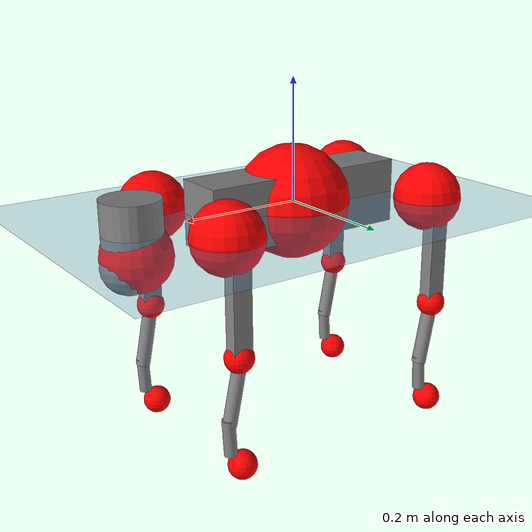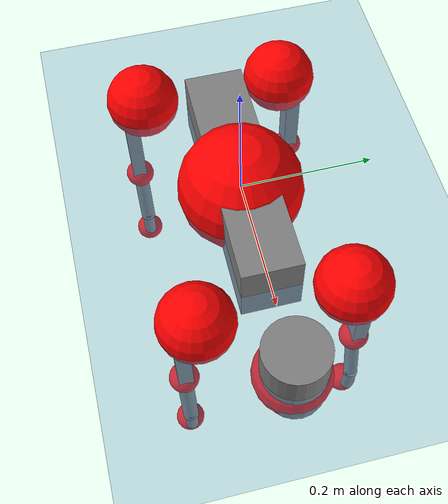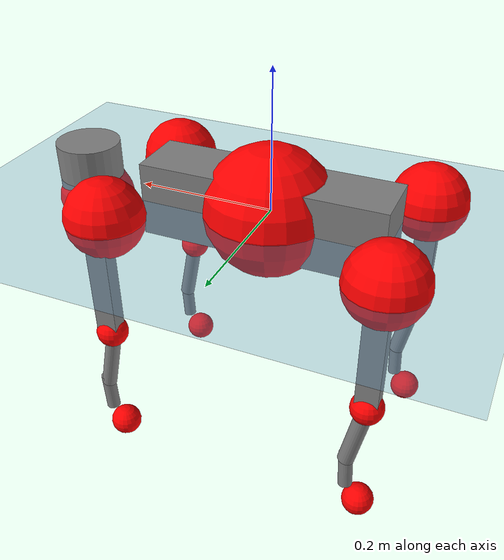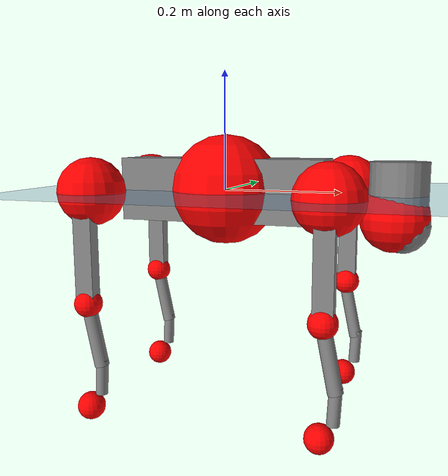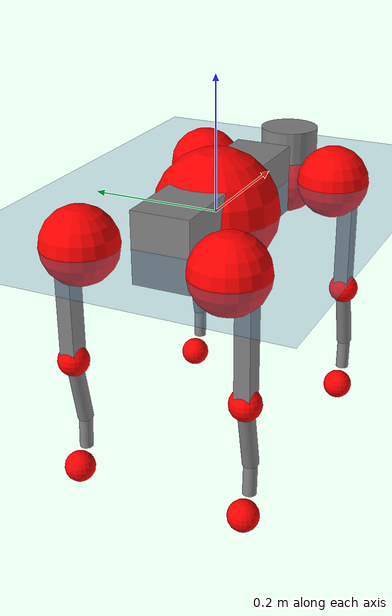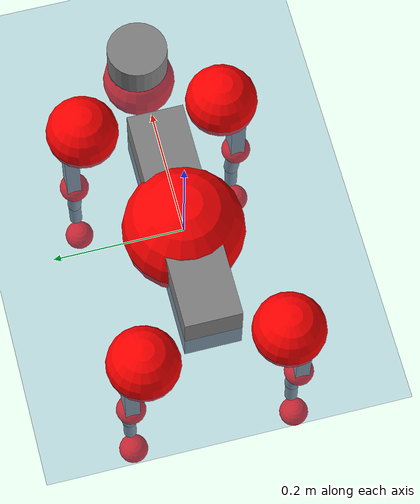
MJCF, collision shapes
<mujoco model="go2">
  <compiler angle="radian" assetdir="assets" balanceinertia="true" inertiafromgeom="false"/>

  <option timestep="0.005" density="1.2" viscosity="2e-05"/>

  <size nkey="1"/>

  <visual>
    <quality shadowsize="8192"/>
    <map shadowclip="0.5"/>
  </visual>

  <default>
    <default class="/">
      <geom contype="0" conaffinity="0" group="1" solref="-1000 -80"/>
      <site size="0.01 0.005 0.005" group="5"/>
      <general forcelimited="true" biastype="affine" gainprm="20" biasprm="0 -20 -0.5"/>
      <default class="go2">
        <joint armature="0.01" damping="0.01" frictionloss="0.2"/>
        <geom condim="1" margin="0.001"/>
        <default class="visual">
          <geom type="mesh" group="2"/>
        </default>
        <default class="collision">
          <geom group="3"/>
          <default class="foot">
            <geom size="0.022 0 0" condim="6" priority="1" friction="0.8 0.02 0.01" solimp="0.015 1 0.022"/>
          </default>
        </default>
        <default class="reward_collision_sphere">
          <geom group="5" rgba="1 0 0 1"/>
        </default>
      </default>
    </default>
  </default>

  <asset>
    <texture type="skybox" colorspace="auto" name="//unnamed_texture_0" builtin="gradient" rgb1="0.95 0.95 0.95" rgb2="0.95 0.95 0.95" width="100" height="600"/>
    <texture type="2d" colorspace="auto" name="texplane" builtin="checker" rgb1="0.345 0.575 0.748" rgb2="0.345 0.575 0.748" markrgb="1 1 1" width="512" height="512"/>
    <material name="MatPlane" class="/" texture="texplane" texuniform="true" texrepeat="2 2" specular="0.9"/>
    <material name="metal" class="/" rgba="0.9 0.95 0.95 1"/>
    <material name="black" class="/" rgba="0 0 0 1"/>
    <material name="white" class="/"/>
    <material name="gray" class="/" rgba="0.671705 0.692426 0.77427 1"/>
    <mesh name="base_0" class="/" file="base_0.obj"/>
    <mesh name="base_1" class="/" file="base_1.obj"/>
    <mesh name="base_2" class="/" file="base_2.obj"/>
    <mesh name="base_3" class="/" file="base_3.obj"/>
    <mesh name="base_4" class="/" file="base_4.obj"/>
    <mesh name="hip_0" class="/" file="hip_0.obj"/>
    <mesh name="hip_1" class="/" file="hip_1.obj"/>
    <mesh name="thigh_0" class="/" file="thigh_0.obj"/>
    <mesh name="thigh_1" class="/" file="thigh_1.obj"/>
    <mesh name="thigh_mirror_0" class="/" file="thigh_mirror_0.obj"/>
    <mesh name="thigh_mirror_1" class="/" file="thigh_mirror_1.obj"/>
    <mesh name="calf_0" class="/" file="calf_0.obj"/>
    <mesh name="calf_1" class="/" file="calf_1.obj"/>
    <mesh name="calf_mirror_0" class="/" file="calf_mirror_0.obj"/>
    <mesh name="calf_mirror_1" class="/" file="calf_mirror_1.obj"/>
    <mesh name="foot" class="/" file="foot.obj"/>
  </asset>

  <worldbody>
    <geom name="floor" class="/" size="100 100 0.125" type="plane" group="0" material="MatPlane"/>
    <light name="toplight_shadow" class="/" pos="0 0 5" dir="0.0990148 0.0990148 -0.990148" type="directional" ambient="0.04 0.04 0.04" diffuse="0.55 0.55 0.55" specular="0.12 0.12 0.12"/>
    <light name="toplight_fill" class="/" pos="0 0 5" dir="0.0990148 0.0990148 -0.990148" type="directional" castshadow="false" ambient="0.04 0.04 0.04" diffuse="0.3 0.3 0.3" specular="0.08 0.08 0.08"/>
    <body name="trunk" childclass="go2" pos="0.00178825 -9.54232e-05 0.000956122" quat="1 4.74982e-05 5.1747e-06 0.000653108">
      <inertial pos="0.0196238 -0.001158 -0.00516525" quat="-0.00114818 0.71257 -0.00272414 0.701594" mass="5.46159" diaginertia="0.111901 0.0741548 0.0104329"/>
      <joint name="//unnamed_joint_0" type="free" armature="0" damping="0" frictionloss="0"/>
      <geom name="//unnamed_geom_1" class="visual" material="black" mesh="base_0"/>
      <geom name="//unnamed_geom_2" class="visual" material="black" mesh="base_1"/>
      <geom name="//unnamed_geom_3" class="visual" material="black" mesh="base_2"/>
      <geom name="//unnamed_geom_4" class="visual" material="white" mesh="base_3"/>
      <geom name="//unnamed_geom_5" class="visual" material="gray" mesh="base_4"/>
      <geom name="trunk_1" class="collision" size="0.175919 0.0437225 0.0533087" type="box"/>
      <geom name="trunk_2" class="collision" size="0.046762 0.0420858" pos="0.288172 0 0.00847036" type="cylinder"/>
      <geom name="trunk_3" class="collision" size="0.0439563" pos="0.296261 0 -0.0508221"/>
      <geom name="//unnamed_geom_9" class="reward_collision_sphere" size="0.093524"/>
      <geom name="//unnamed_geom_10" class="reward_collision_sphere" size="0.0561144" pos="0.283116 0 -0.0381166"/>
      <site name="imu" pos="-0.027072 -0.00399618 0.0415385" size="0.0093524"/>
      <camera name="track" pos="0 -1.89511 0" quat="0.707107 0.707107 0 0" mode="trackcom"/>
      <camera name="ego_camera" pos="0.315472 0 0.0381166" quat="-0.5 -0.5 0.5 0.5"/>
      <body name="FL_hip" pos="0.19488 0.0439482 0.00113067" quat="1 0.000133792 -0.000228563 0.000470118">
        <inertial pos="-0.00555767 0.00212085 -0.000823397" quat="0.495857 0.499197 0.505038 0.499865" mass="0.56171" diaginertia="0.000956296 0.000450661 0.000208897"/>
        <joint name="FL_hip_joint" pos="0 0 0" axis="0.999909 -0.0119965 0.0061565" stiffness="0.00305086" range="-1.01584 1.0394" armature="0.00924284" damping="0.000994705" frictionloss="0.186321"/>
        <geom name="//unnamed_geom_11" class="visual" material="metal" mesh="hip_0"/>
        <geom name="//unnamed_geom_12" class="visual" material="gray" mesh="hip_1"/>
        <geom name="//unnamed_geom_13" class="collision" size="0.043021 0.0187048" pos="0 0.0758044 0" quat="0.707107 0.707107 0 0" type="cylinder"/>
        <geom name="//unnamed_geom_14" class="reward_collision_sphere" size="0.0561144" pos="0 0.0663289 0"/>
        <body name="FL_thigh" pos="-0.00156064 0.0896811 0.00166471" quat="1 -0.000216615 0.000173972 -7.14737e-05">
          <inertial pos="-0.00407159 -0.0205773 -0.0287656" quat="0.829586 0.0850084 -0.0200318 0.551506" mass="0.942334" diaginertia="0.00621268 0.00446787 0.000392103"/>
          <joint name="FL_thigh_joint" pos="0 0 0" axis="-0.000286146 0.999964 0.00850623" range="-1.5869 3.49124" armature="0.00969574" damping="0.00285834" frictionloss="0.194725"/>
          <geom name="//unnamed_geom_15" class="visual" material="metal" mesh="thigh_0"/>
          <geom name="//unnamed_geom_16" class="visual" material="gray" mesh="thigh_1"/>
          <geom name="//unnamed_geom_17" class="collision" size="0.099603 0.0114567 0.0158991" pos="0 0 -0.0902093" quat="0.707107 0 0.707107 0" type="box"/>
          <body name="FL_calf" pos="-0.000241054 -0.00210354 -0.180537" quat="1 5.7906e-05 0.000165142 0.000234037">
            <inertial pos="0.00588028 -0.000640276 -0.119452" quat="0.710414 0.00586512 -0.00616191 0.703733" mass="0.197475" diaginertia="0.00162492 0.00113818 2.35508e-05"/>
            <joint name="FL_calf_joint" pos="0 0 0" axis="-0.00135449 0.999996 -0.00256856" stiffness="4.10863e-05" range="-2.75062 -0.834982" armature="0.00897433" damping="0" frictionloss="0.179178"/>
            <geom name="//unnamed_geom_18" class="visual" material="gray" mesh="calf_0"/>
            <geom name="//unnamed_geom_19" class="visual" material="black" mesh="calf_1"/>
            <geom name="FL_calf0" class="collision" size="0.0112229 0.0561144" pos="0.00808903 0 -0.0508221" quat="0.994493 0 -0.104807 0" type="cylinder"/>
            <geom name="//unnamed_geom_21" class="collision" size="0.0102876 0.0303953" pos="0.0202226 0 -0.125361" quat="0.999688 0 0.0249974 0" type="cylinder"/>
            <geom name="//unnamed_geom_22" class="visual" pos="0 0 -0.180419" quat="1 0 0 0" material="black" mesh="foot"/>
            <geom name="FL_foot" class="foot" size="0.017541" pos="-0.00202226 0 -0.180419"/>
            <geom name="//unnamed_geom_24" class="reward_collision_sphere" size="0.023381"/>
            <geom name="//unnamed_geom_25" class="reward_collision_sphere" size="0.023381" pos="-0.00202226 0 -0.180419"/>
            <site name="FL_foot" class="foot" pos="-0.00202226 0 -0.180419" size="0.0093524"/>
          </body>
        </body>
      </body>
      <body name="FR_hip" pos="0.19667 -0.0440586 -0.00135776" quat="1 -6.19029e-05 7.31333e-05 -6.34392e-05">
        <inertial pos="-0.00604567 -0.00271458 -0.0003439" quat="0.4954 0.50625 0.500209 0.498076" mass="0.552972" diaginertia="0.000941303 0.000459304 0.000212294"/>
        <joint name="FR_hip_joint" pos="0 0 0" axis="1 4.94683e-05 -0.000173484" stiffness="0.00588356" range="-1.06583 1.05016" armature="0.00912554" damping="0.0170943" frictionloss="0.180182"/>
        <geom name="//unnamed_geom_26" class="visual" pos="0 8.75688e-10 3.75601e-08" quat="4.63268e-05 1 0 0" material="metal" mesh="hip_0"/>
        <geom name="//unnamed_geom_27" class="visual" pos="0 1.4196e-09 -9.29005e-08" quat="4.63268e-05 1 0 0" material="gray" mesh="hip_1"/>
        <geom name="//unnamed_geom_28" class="collision" size="0.043021 0.0187048" pos="0 -0.0758044 0" quat="0.707107 0.707107 0 0" type="cylinder"/>
        <geom name="//unnamed_geom_29" class="reward_collision_sphere" size="0.0561144" pos="0 -0.0663289 0"/>
        <body name="FR_thigh" pos="0.000409829 -0.0924592 -0.000259843" quat="1 -2.12194e-05 -3.2078e-07 1.07484e-05">
          <inertial pos="-0.00439098 0.0210121 -0.0278675" quat="0.550809 -0.0193266 0.0862378 0.829939" mass="0.94742" diaginertia="0.00633605 0.00455399 0.000390801"/>
          <joint name="FR_thigh_joint" pos="0 0 0" axis="0.00173031 -0.999993 0.00325484" range="-3.50202 1.57879" armature="0.00929359" damping="0.0141479" frictionloss="0.178067"/>
          <geom name="//unnamed_geom_30" class="visual" material="metal" mesh="thigh_mirror_0"/>
          <geom name="//unnamed_geom_31" class="visual" material="gray" mesh="thigh_mirror_1"/>
          <geom name="//unnamed_geom_32" class="collision" size="0.099603 0.0114567 0.0158991" pos="0 0 -0.0902093" quat="0.707107 0 0.707107 0" type="box"/>
          <body name="FR_calf" pos="-0.000539402 -0.00121239 -0.17918" quat="1 -1.44474e-05 -3.29965e-05 8.68562e-06">
            <inertial pos="0.00618459 0.000820692 -0.120233" quat="0.702135 -0.000160865 -0.000835542 0.712044" mass="0.198123" diaginertia="0.00157543 0.00111866 2.31846e-05"/>
            <joint name="FR_calf_joint" pos="0 0 0" axis="-0.00704525 -0.999973 0.0019058" range="0.837634 2.72183" armature="0.00970555" damping="0.011927" frictionloss="0.196086"/>
            <geom name="//unnamed_geom_33" class="visual" material="gray" mesh="calf_mirror_0"/>
            <geom name="//unnamed_geom_34" class="visual" material="black" mesh="calf_mirror_1"/>
            <geom name="FR_calf0" class="collision" size="0.0121581 0.0561144" pos="0.0101113 0 -0.0508221" quat="0.995004 0 -0.0998334 0" type="cylinder"/>
            <geom name="//unnamed_geom_36" class="collision" size="0.0102876 0.0303953" pos="0.0202226 0 -0.125361" quat="0.999688 0 0.0249974 0" type="cylinder"/>
            <geom name="//unnamed_geom_37" class="visual" pos="0 0 -0.180419" quat="1 0 0 0" material="black" mesh="foot"/>
            <geom name="FR_foot" class="foot" size="0.0231186" pos="-0.00202226 0 -0.180419"/>
            <geom name="//unnamed_geom_39" class="reward_collision_sphere" size="0.023381"/>
            <geom name="//unnamed_geom_40" class="reward_collision_sphere" size="0.023381" pos="-0.00202226 0 -0.180419"/>
            <site name="FR_foot" class="foot" pos="-0.00202226 0 -0.180419" size="0.0093524"/>
          </body>
        </body>
      </body>
      <body name="RL_hip" pos="-0.19546 0.0443893 -0.000263293" quat="1 0.000154566 -4.64295e-05 4.57858e-05">
        <inertial pos="0.00464293 0.00373452 0.000105439" quat="0.506926 0.503304 0.498126 0.491509" mass="0.565227" diaginertia="0.000939379 0.000457732 0.00021268"/>
        <joint name="RL_hip_joint" pos="0 0 0" axis="-0.999807 0.00458605 0.0190878" stiffness="0.000696873" range="-1.05817 1.05841" armature="0.00909899" damping="0.0175114" frictionloss="0.196711"/>
        <geom name="//unnamed_geom_41" class="visual" pos="-1.42951e-09 0 -2.80217e-07" quat="4.63268e-05 0 1 0" material="metal" mesh="hip_0"/>
        <geom name="//unnamed_geom_42" class="visual" pos="-2.31741e-09 0 -2.48513e-07" quat="4.63268e-05 0 1 0" material="gray" mesh="hip_1"/>
        <geom name="//unnamed_geom_43" class="collision" size="0.043021 0.0187048" pos="0 0.0758044 0" quat="0.707107 0.707107 0 0" type="cylinder"/>
        <geom name="//unnamed_geom_44" class="reward_collision_sphere" size="0.0561144" pos="0 0.0663289 0"/>
        <body name="RL_thigh" pos="0.000197454 0.0891832 0.000723085" quat="1 3.12208e-05 -0.000262054 -6.01267e-05">
          <inertial pos="-0.0036277 -0.0208858 -0.0274744" quat="0.830169 0.0825314 -0.0166522 0.551118" mass="0.956001" diaginertia="0.00624154 0.0044665 0.000379742"/>
          <joint name="RL_thigh_joint" pos="0 0 0" axis="-4.40897e-06 1 1.23849e-05" stiffness="0.00326118" range="-0.522919 4.53495" armature="0.0094115" damping="0.0125888" frictionloss="0.186309"/>
          <geom name="//unnamed_geom_45" class="visual" material="metal" mesh="thigh_0"/>
          <geom name="//unnamed_geom_46" class="visual" material="gray" mesh="thigh_1"/>
          <geom name="//unnamed_geom_47" class="collision" size="0.099603 0.0114567 0.0158991" pos="0 0 -0.0902093" quat="0.707107 0 0.707107 0" type="box"/>
          <body name="RL_calf" pos="2.87213e-05 -0.00031501 -0.181968" quat="1 5.93213e-05 -5.82035e-05 8.29155e-05">
            <inertial pos="0.00714752 0.00124139 -0.119776" quat="0.70775 0.00244497 -0.0042432 0.706446" mass="0.195723" diaginertia="0.00157584 0.00110645 2.24657e-05"/>
            <joint name="RL_calf_joint" pos="0 0 0" axis="-0.00104952 0.999995 -0.00295061" range="-2.72256 -0.85527" armature="0.00902216" damping="0.00711966" frictionloss="0.201931"/>
            <geom name="//unnamed_geom_48" class="visual" material="gray" mesh="calf_0"/>
            <geom name="//unnamed_geom_49" class="visual" material="black" mesh="calf_1"/>
            <geom name="RL_calf0" class="collision" size="0.0121581 0.0561144" pos="0.0101113 0 -0.0508221" quat="0.995004 0 -0.0998334 0" type="cylinder"/>
            <geom name="//unnamed_geom_51" class="collision" size="0.0102876 0.0303953" pos="0.0202226 0 -0.125361" quat="0.999688 0 0.0249974 0" type="cylinder"/>
            <geom name="//unnamed_geom_52" class="visual" pos="0 0 -0.180419" quat="1 0 0 0" material="black" mesh="foot"/>
            <geom name="RL_foot" class="foot" size="0.0175403" pos="-0.00202226 0 -0.180419"/>
            <geom name="//unnamed_geom_54" class="reward_collision_sphere" size="0.023381"/>
            <geom name="//unnamed_geom_55" class="reward_collision_sphere" size="0.023381" pos="-0.00202226 0 -0.180419"/>
            <site name="RL_foot" class="foot" pos="-0.00202226 0 -0.180419" size="0.0093524"/>
          </body>
        </body>
      </body>
      <body name="RR_hip" pos="-0.196464 -0.0435055 1.66505e-05" quat="1 -6.61495e-05 0.000324868 -0.000753778">
        <inertial pos="0.00686208 -0.00176239 -0.00148173" quat="0.499825 0.496575 0.49817 0.505385" mass="0.554785" diaginertia="0.000935747 0.000456685 0.000208313"/>
        <joint name="RR_hip_joint" pos="0 0 0" axis="-0.999955 0.00351017 0.0088513" range="-1.06513 1.05513" armature="0.00980225" damping="0.0107148" frictionloss="0.190151"/>
        <geom name="//unnamed_geom_56" class="visual" pos="1.42731e-09 8.75688e-10 -3.17777e-07" quat="2.14617e-09 4.63268e-05 4.63268e-05 -1" material="metal" mesh="hip_0"/>
        <geom name="//unnamed_geom_57" class="visual" pos="2.32285e-09 1.4196e-09 -1.55612e-07" quat="2.14617e-09 4.63268e-05 4.63268e-05 -1" material="gray" mesh="hip_1"/>
        <geom name="//unnamed_geom_58" class="collision" size="0.043021 0.0187048" pos="0 -0.0758044 0" quat="0.707107 0.707107 0 0" type="cylinder"/>
        <geom name="//unnamed_geom_59" class="reward_collision_sphere" size="0.0561144" pos="0 -0.0663289 0"/>
        <body name="RR_thigh" pos="-6.45618e-05 -0.0909769 -0.00278524" quat="1 -1.73178e-05 7.92069e-06 -1.05269e-05">
          <inertial pos="-0.00411734 0.0213558 -0.0277732" quat="0.55167 -0.0199249 0.084722 0.829509" mass="0.933318" diaginertia="0.00625532 0.00444256 0.000383597"/>
          <joint name="RR_thigh_joint" pos="0 0 0" axis="0.00923678 -0.999955 -0.00202618" range="-4.54169 0.542079" armature="0.00915568" damping="0.0127545" frictionloss="0.189821"/>
          <geom name="//unnamed_geom_60" class="visual" material="metal" mesh="thigh_mirror_0"/>
          <geom name="//unnamed_geom_61" class="visual" material="gray" mesh="thigh_mirror_1"/>
          <geom name="//unnamed_geom_62" class="collision" size="0.099603 0.0114567 0.0158991" pos="0 0 -0.0902093" quat="0.707107 0 0.707107 0" type="box"/>
          <body name="RR_calf" pos="-0.000104163 0.000772307 -0.181803" quat="1 2.86613e-06 6.88563e-05 -3.77012e-05">
            <inertial pos="0.00615198 0.00112473 -0.11993" quat="0.702574 -0.0027611 -0.00185508 0.711603" mass="0.197426" diaginertia="0.00155933 0.0011152 2.33616e-05"/>
            <joint name="RR_calf_joint" pos="0 0 0" axis="-0.0108793 -0.99994 -0.00100492" range="0.845096 2.72218" armature="0.00951595" damping="0.0148013" frictionloss="0.190644"/>
            <geom name="//unnamed_geom_63" class="visual" material="gray" mesh="calf_mirror_0"/>
            <geom name="//unnamed_geom_64" class="visual" material="black" mesh="calf_mirror_1"/>
            <geom name="RR_calf0" class="collision" size="0.0121581 0.0561144" pos="0.0101113 0 -0.0508221" quat="0.995004 0 -0.0998334 0" type="cylinder"/>
            <geom name="//unnamed_geom_66" class="collision" size="0.0102876 0.0303953" pos="0.0202226 0 -0.125361" quat="0.999688 0 0.0249974 0" type="cylinder"/>
            <geom name="//unnamed_geom_67" class="visual" pos="0 0 -0.180419" quat="1 0 0 0" material="black" mesh="foot"/>
            <geom name="RR_foot" class="foot" size="0.0219513" pos="-0.00202226 0 -0.180419"/>
            <geom name="//unnamed_geom_69" class="reward_collision_sphere" size="0.023381"/>
            <geom name="//unnamed_geom_70" class="reward_collision_sphere" size="0.023381" pos="-0.00202226 0 -0.180419"/>
            <site name="RR_foot" class="foot" pos="-0.00202226 0 -0.180419" size="0.0093524"/>
          </body>
        </body>
      </body>
    </body>
  </worldbody>

  <contact>
    <pair class="/" geom1="floor" geom2="FL_foot" name="//unnamed_contact_0"/>
    <pair class="/" geom1="floor" geom2="FR_foot" name="//unnamed_contact_1"/>
    <pair class="/" geom1="floor" geom2="RL_foot" name="//unnamed_contact_2"/>
    <pair class="/" geom1="floor" geom2="RR_foot" name="//unnamed_contact_3"/>
  </contact>

  <actuator>
    <general name="FL_hip" class="/" joint="FL_hip_joint" forcerange="-22.1322 22.1322" gainprm="18.4854" biasprm="0 -18.4854 -0.466666"/>
    <general name="FL_thigh" class="/" joint="FL_thigh_joint" forcerange="-22.8821 22.8821" gainprm="18.4854" biasprm="0 -18.4854 -0.466666"/>
    <general name="FL_calf" class="/" joint="FL_calf_joint" forcerange="-41.4789 41.4789" gainprm="18.4854" biasprm="0 -18.4854 -0.466666"/>
    <general name="FR_hip" class="/" joint="FR_hip_joint" forcerange="-22.3503 22.3503" gainprm="18.4854" biasprm="0 -18.4854 -0.466666"/>
    <general name="FR_thigh" class="/" joint="FR_thigh_joint" forcerange="-21.4559 21.4559" gainprm="18.4854" biasprm="0 -18.4854 -0.466666"/>
    <general name="FR_calf" class="/" joint="FR_calf_joint" forcerange="-42.7192 42.7192" gainprm="18.4854" biasprm="0 -18.4854 -0.466666"/>
    <general name="RL_hip" class="/" joint="RL_hip_joint" forcerange="-23.4614 23.4614" gainprm="18.4854" biasprm="0 -18.4854 -0.466666"/>
    <general name="RL_thigh" class="/" joint="RL_thigh_joint" forcerange="-22.9856 22.9856" gainprm="18.4854" biasprm="0 -18.4854 -0.466666"/>
    <general name="RL_calf" class="/" joint="RL_calf_joint" forcerange="-40.2992 40.2992" gainprm="18.4854" biasprm="0 -18.4854 -0.466666"/>
    <general name="RR_hip" class="/" joint="RR_hip_joint" forcerange="-22.3413 22.3413" gainprm="18.4854" biasprm="0 -18.4854 -0.466666"/>
    <general name="RR_thigh" class="/" joint="RR_thigh_joint" forcerange="-23.2561 23.2561" gainprm="18.4854" biasprm="0 -18.4854 -0.466666"/>
    <general name="RR_calf" class="/" joint="RR_calf_joint" forcerange="-42.9009 42.9009" gainprm="18.4854" biasprm="0 -18.4854 -0.466666"/>
  </actuator>

  <sensor>
    <gyro site="imu" name="imu_angular_velocity"/>
    <velocimeter site="imu" name="imu_linear_velocity"/>
    <framelinvel objtype="site" objname="FL_foot" name="FL_foot_global_linear_velocity"/>
    <framelinvel objtype="site" objname="FR_foot" name="FR_foot_global_linear_velocity"/>
    <framelinvel objtype="site" objname="RL_foot" name="RL_foot_global_linear_velocity"/>
    <framelinvel objtype="site" objname="RR_foot" name="RR_foot_global_linear_velocity"/>
  </sensor>

  <keyframe>
    <key name="home" qpos="0 0 0.325 1 0 0 0 0.1 0.8 -1.5 -0.1 -0.8 1.5 -0.1 0.8 -1.5 0.1 -0.8 1.5"/>
  </keyframe>
</mujoco>
